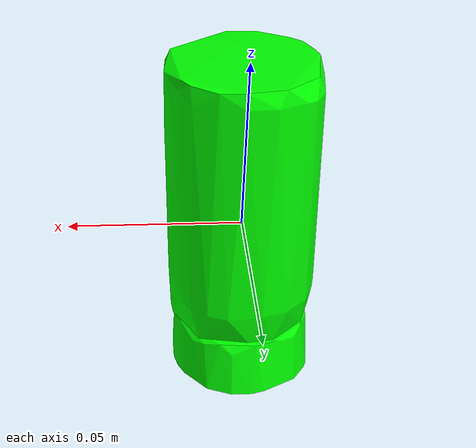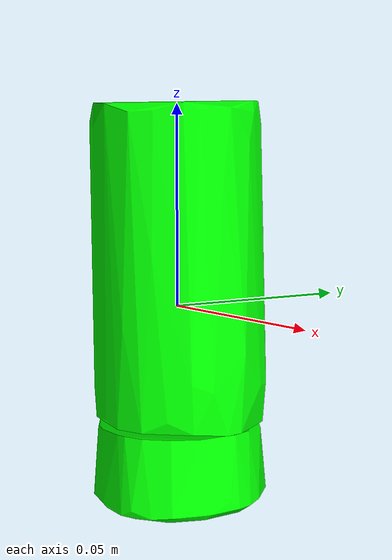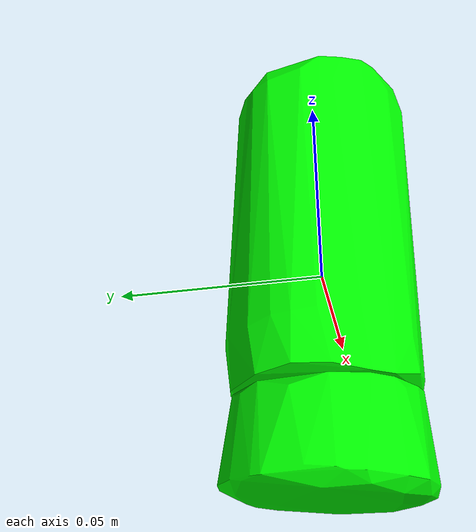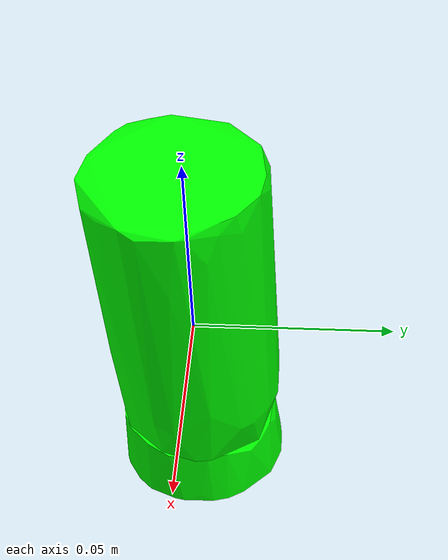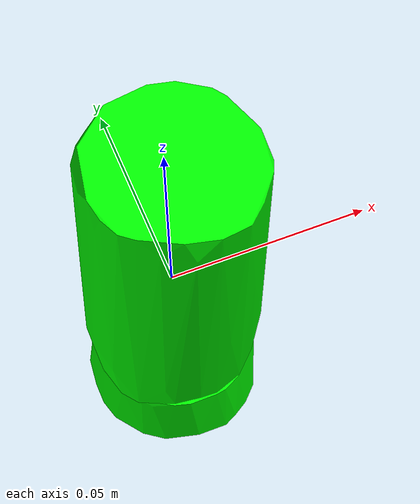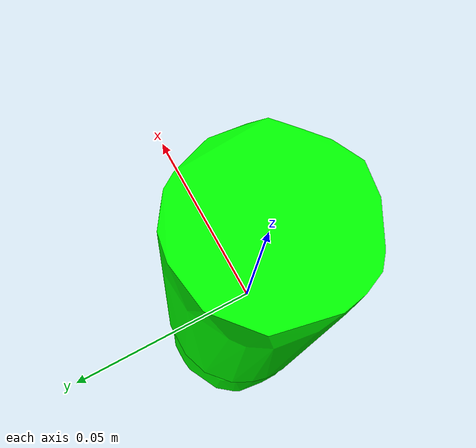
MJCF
<mujoco model="GreenSaltCylinder">
  <asset>
    <mesh file="meshes/GreenSaltCylinder/GreenSaltCylinder_0.stl" name="GreenSaltCylinder_0"/>
    <mesh file="meshes/GreenSaltCylinder/GreenSaltCylinder_1.stl" name="GreenSaltCylinder_1"/>
  </asset>
  <worldbody>
    <body>
      <body name="collision">
        <geom condim="4" density="100" friction="1.5 0.3 0.1" group="1" mesh="GreenSaltCylinder_0" pos="0 0 0" rgba="0 1 0 1" solimp="0.998 0.998 0.001" solref="0.002 1" type="mesh"/>
        <geom condim="4" density="100" friction="1.5 0.3 0.1" group="1" mesh="GreenSaltCylinder_1" pos="0 0 0" rgba="0 1 0 1" solimp="0.998 0.998 0.001" solref="0.002 1" type="mesh"/>
      </body>
      <body name="visual">
        <geom conaffinity="0" contype="0" group="0" mass="0.0001" mesh="GreenSaltCylinder_0" pos="0 0 0" rgba="0 1 0 1" type="mesh"/>
        <geom conaffinity="0" contype="0" group="0" mass="0.0001" mesh="GreenSaltCylinder_1" pos="0 0 0" rgba="0 1 0 1" type="mesh"/>
      </body>
      <site name="bottom_site" pos="0 0 -0.06" rgba="0 0 0 0" size="0.005"/>
      <site name="top_site" pos="0 0 0.04" rgba="0 0 0 0" size="0.005"/>
      <site name="horizontal_radius_site" pos="0.025 0.025 0" rgba="0 0 0 0" size="0.005"/>
    </body>
  </worldbody>
</mujoco>
